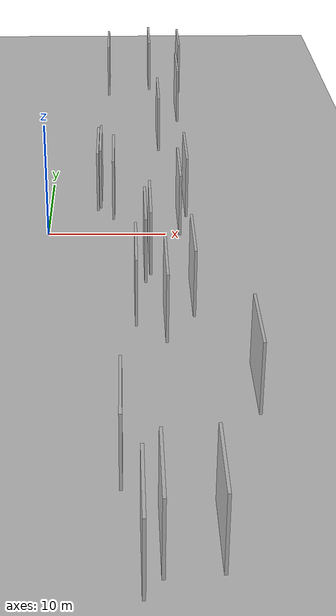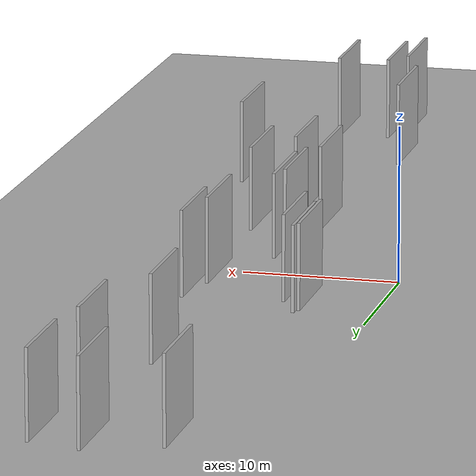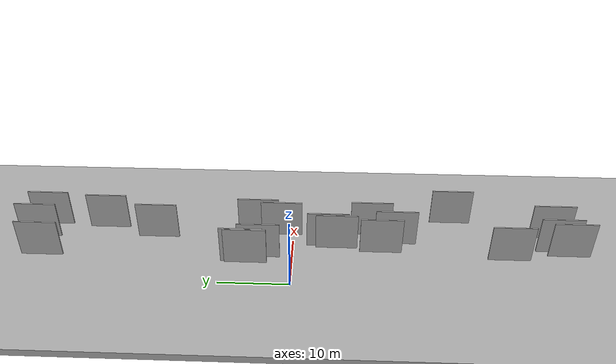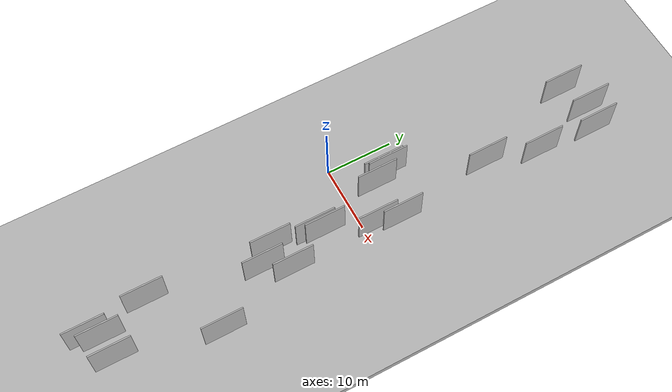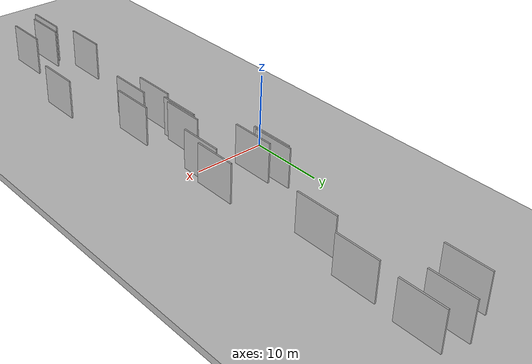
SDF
<?xml version="1.0" encoding="utf-8"?>

<sdf version="1.6">

   <world name="default">

      <gui fullscreen="0">

         <camera name="user_camera">

            <pose>-15 0 4.57585 0 0 0</pose>

            <view_controller>orbit</view_controller>

         </camera>

      </gui>

      <scene>

         <sky>

           <clouds>

             <speed>12</speed>

           </clouds>

         </sky>

         <ambient>0.4 0.4 0.4 1</ambient>

         <background>0.7 0.7 0.7 1</background>

         <shadows>1</shadows>

      </scene>

      <gravity>0 0 -9.8066</gravity>

      <magnetic_field>6e-06 2.3e-05 -4.2e-05</magnetic_field>

      <physics default="0" name="default_physics" type="ode">

         <ode>

            <solver>

               <type>quick</type>

               <iters>10</iters>

               <sor>1.0</sor>

               <use_dynamic_moi_rescaling>0</use_dynamic_moi_rescaling>

            </solver>

            <constraints>

               <cfm>0</cfm>

               <erp>0.2</erp>

               <contact_max_correcting_vel>100</contact_max_correcting_vel>

               <contact_surface_layer>0.001</contact_surface_layer>

            </constraints>

         </ode>

         <max_step_size>0.004</max_step_size>

         <real_time_factor>1</real_time_factor>

         <real_time_update_rate>250</real_time_update_rate>

      </physics>

      <light name="sun" type="directional">

         <cast_shadows>1</cast_shadows>

         <pose>0 0 10 0 0 0</pose>

         <diffuse>0.8 0.8 0.8 1</diffuse>

         <specular>0.2 0.2 0.2 1</specular>

         <attenuation>

            <range>1000</range>

            <constant>0.9</constant>

            <linear>0.01</linear>

            <quadratic>0.001</quadratic>

         </attenuation>

         <direction>-0.5 0.1 -0.9</direction>

      </light>

      <include>

         <name>ground_plane_1</name>

         <uri>model://HANNAS_ground_plane</uri>

         <pose>0 0 0  0 0 0</pose>

      </include>

      <include>

         <name>ground_plane_2</name>

         <uri>model://HANNAS_ground_plane</uri>

         <pose>100 0 0  0 0 0</pose>

      </include>

      <model name="HANNAS_wall_1">

         <static>1</static>

         <pose frame="">12.6105 36.4581 0.0 0.000000 0.000000 1.570796</pose>

         <link name="link">

            <pose frame="">0 0 3.00 0 0 0</pose>

            <collision name="collision">

               <geometry>

                  <box>

                     <size>6.00 0.2 6.00</size>

                  </box>

               </geometry>

               <max_contacts>10</max_contacts>

               <surface>

                  <contact>

                     <ode/>

                  </contact>

                  <bounce/>

                  <friction>

                     <torsional>

                        <ode/>

                     </torsional>

                     <ode/>

                  </friction>

               </surface>

            </collision>

            <visual name="visual">

               <cast_shadows>0</cast_shadows>

               <geometry>

                  <box>

                     <size>6.00 0.2 6.00</size>

                  </box>

               </geometry>

               <material>

                  <script>

                     <uri>model://HANNAS_wall/materials/scripts</uri>

                     <uri>model://HANNAS_wall/materials/textures</uri>

                     <name>vrc/HANNAS_wall</name>

                  </script>

               </material>

            </visual>

            <self_collide>0</self_collide>

            <enable_wind>0</enable_wind>

            <kinematic>0</kinematic>

         </link>

      </model>

      <model name="HANNAS_wall_2">

         <static>1</static>

         <pose frame="">7.3107 -12.6159 0.0 0.000000 0.000000 1.570796</pose>

         <link name="link">

            <pose frame="">0 0 3.00 0 0 0</pose>

            <collision name="collision">

               <geometry>

                  <box>

                     <size>6.00 0.2 6.00</size>

                  </box>

               </geometry>

               <max_contacts>10</max_contacts>

               <surface>

                  <contact>

                     <ode/>

                  </contact>

                  <bounce/>

                  <friction>

                     <torsional>

                        <ode/>

                     </torsional>

                     <ode/>

                  </friction>

               </surface>

            </collision>

            <visual name="visual">

               <cast_shadows>0</cast_shadows>

               <geometry>

                  <box>

                     <size>6.00 0.2 6.00</size>

                  </box>

               </geometry>

               <material>

                  <script>

                     <uri>model://HANNAS_wall/materials/scripts</uri>

                     <uri>model://HANNAS_wall/materials/textures</uri>

                     <name>vrc/HANNAS_wall</name>

                  </script>

               </material>

            </visual>

            <self_collide>0</self_collide>

            <enable_wind>0</enable_wind>

            <kinematic>0</kinematic>

         </link>

      </model>

      <model name="HANNAS_wall_3">

         <static>1</static>

         <pose frame="">8.4185 -37.9059 0.0 0.000000 0.000000 1.570796</pose>

         <link name="link">

            <pose frame="">0 0 3.00 0 0 0</pose>

            <collision name="collision">

               <geometry>

                  <box>

                     <size>6.00 0.2 6.00</size>

                  </box>

               </geometry>

               <max_contacts>10</max_contacts>

               <surface>

                  <contact>

                     <ode/>

                  </contact>

                  <bounce/>

                  <friction>

                     <torsional>

                        <ode/>

                     </torsional>

                     <ode/>

                  </friction>

               </surface>

            </collision>

            <visual name="visual">

               <cast_shadows>0</cast_shadows>

               <geometry>

                  <box>

                     <size>6.00 0.2 6.00</size>

                  </box>

               </geometry>

               <material>

                  <script>

                     <uri>model://HANNAS_wall/materials/scripts</uri>

                     <uri>model://HANNAS_wall/materials/textures</uri>

                     <name>vrc/HANNAS_wall</name>

                  </script>

               </material>

            </visual>

            <self_collide>0</self_collide>

            <enable_wind>0</enable_wind>

            <kinematic>0</kinematic>

         </link>

      </model>

      <model name="HANNAS_wall_4">

         <static>1</static>

         <pose frame="">11.8696 5.2201 0.0 0.000000 0.000000 1.570796</pose>

         <link name="link">

            <pose frame="">0 0 3.00 0 0 0</pose>

            <collision name="collision">

               <geometry>

                  <box>

                     <size>6.00 0.2 6.00</size>

                  </box>

               </geometry>

               <max_contacts>10</max_contacts>

               <surface>

                  <contact>

                     <ode/>

                  </contact>

                  <bounce/>

                  <friction>

                     <torsional>

                        <ode/>

                     </torsional>

                     <ode/>

                  </friction>

               </surface>

            </collision>

            <visual name="visual">

               <cast_shadows>0</cast_shadows>

               <geometry>

                  <box>

                     <size>6.00 0.2 6.00</size>

                  </box>

               </geometry>

               <material>

                  <script>

                     <uri>model://HANNAS_wall/materials/scripts</uri>

                     <uri>model://HANNAS_wall/materials/textures</uri>

                     <name>vrc/HANNAS_wall</name>

                  </script>

               </material>

            </visual>

            <self_collide>0</self_collide>

            <enable_wind>0</enable_wind>

            <kinematic>0</kinematic>

         </link>

      </model>

      <model name="HANNAS_wall_5">

         <static>1</static>

         <pose frame="">8.1172 -6.2833 0.0 0.000000 0.000000 1.570796</pose>

         <link name="link">

            <pose frame="">0 0 3.00 0 0 0</pose>

            <collision name="collision">

               <geometry>

                  <box>

                     <size>6.00 0.2 6.00</size>

                  </box>

               </geometry>

               <max_contacts>10</max_contacts>

               <surface>

                  <contact>

                     <ode/>

                  </contact>

                  <bounce/>

                  <friction>

                     <torsional>

                        <ode/>

                     </torsional>

                     <ode/>

                  </friction>

               </surface>

            </collision>

            <visual name="visual">

               <cast_shadows>0</cast_shadows>

               <geometry>

                  <box>

                     <size>6.00 0.2 6.00</size>

                  </box>

               </geometry>

               <material>

                  <script>

                     <uri>model://HANNAS_wall/materials/scripts</uri>

                     <uri>model://HANNAS_wall/materials/textures</uri>

                     <name>vrc/HANNAS_wall</name>

                  </script>

               </material>

            </visual>

            <self_collide>0</self_collide>

            <enable_wind>0</enable_wind>

            <kinematic>0</kinematic>

         </link>

      </model>

      <model name="HANNAS_wall_6">

         <static>1</static>

         <pose frame="">9.4708 -14.8449 0.0 0.000000 0.000000 1.570796</pose>

         <link name="link">

            <pose frame="">0 0 3.00 0 0 0</pose>

            <collision name="collision">

               <geometry>

                  <box>

                     <size>6.00 0.2 6.00</size>

                  </box>

               </geometry>

               <max_contacts>10</max_contacts>

               <surface>

                  <contact>

                     <ode/>

                  </contact>

                  <bounce/>

                  <friction>

                     <torsional>

                        <ode/>

                     </torsional>

                     <ode/>

                  </friction>

               </surface>

            </collision>

            <visual name="visual">

               <cast_shadows>0</cast_shadows>

               <geometry>

                  <box>

                     <size>6.00 0.2 6.00</size>

                  </box>

               </geometry>

               <material>

                  <script>

                     <uri>model://HANNAS_wall/materials/scripts</uri>

                     <uri>model://HANNAS_wall/materials/textures</uri>

                     <name>vrc/HANNAS_wall</name>

                  </script>

               </material>

            </visual>

            <self_collide>0</self_collide>

            <enable_wind>0</enable_wind>

            <kinematic>0</kinematic>

         </link>

      </model>

      <model name="HANNAS_wall_7">

         <static>1</static>

         <pose frame="">6.1593 -30.7250 0.0 0.000000 0.000000 1.570796</pose>

         <link name="link">

            <pose frame="">0 0 3.00 0 0 0</pose>

            <collision name="collision">

               <geometry>

                  <box>

                     <size>6.00 0.2 6.00</size>

                  </box>

               </geometry>

               <max_contacts>10</max_contacts>

               <surface>

                  <contact>

                     <ode/>

                  </contact>

                  <bounce/>

                  <friction>

                     <torsional>

                        <ode/>

                     </torsional>

                     <ode/>

                  </friction>

               </surface>

            </collision>

            <visual name="visual">

               <cast_shadows>0</cast_shadows>

               <geometry>

                  <box>

                     <size>6.00 0.2 6.00</size>

                  </box>

               </geometry>

               <material>

                  <script>

                     <uri>model://HANNAS_wall/materials/scripts</uri>

                     <uri>model://HANNAS_wall/materials/textures</uri>

                     <name>vrc/HANNAS_wall</name>

                  </script>

               </material>

            </visual>

            <self_collide>0</self_collide>

            <enable_wind>0</enable_wind>

            <kinematic>0</kinematic>

         </link>

      </model>

      <model name="HANNAS_wall_8">

         <static>1</static>

         <pose frame="">4.8755 35.7219 0.0 0.000000 0.000000 1.570796</pose>

         <link name="link">

            <pose frame="">0 0 3.00 0 0 0</pose>

            <collision name="collision">

               <geometry>

                  <box>

                     <size>6.00 0.2 6.00</size>

                  </box>

               </geometry>

               <max_contacts>10</max_contacts>

               <surface>

                  <contact>

                     <ode/>

                  </contact>

                  <bounce/>

                  <friction>

                     <torsional>

                        <ode/>

                     </torsional>

                     <ode/>

                  </friction>

               </surface>

            </collision>

            <visual name="visual">

               <cast_shadows>0</cast_shadows>

               <geometry>

                  <box>

                     <size>6.00 0.2 6.00</size>

                  </box>

               </geometry>

               <material>

                  <script>

                     <uri>model://HANNAS_wall/materials/scripts</uri>

                     <uri>model://HANNAS_wall/materials/textures</uri>

                     <name>vrc/HANNAS_wall</name>

                  </script>

               </material>

            </visual>

            <self_collide>0</self_collide>

            <enable_wind>0</enable_wind>

            <kinematic>0</kinematic>

         </link>

      </model>

      <model name="HANNAS_wall_9">

         <static>1</static>

         <pose frame="">9.8941 19.8571 0.0 0.000000 0.000000 1.570796</pose>

         <link name="link">

            <pose frame="">0 0 3.00 0 0 0</pose>

            <collision name="collision">

               <geometry>

                  <box>

                     <size>6.00 0.2 6.00</size>

                  </box>

               </geometry>

               <max_contacts>10</max_contacts>

               <surface>

                  <contact>

                     <ode/>

                  </contact>

                  <bounce/>

                  <friction>

                     <torsional>

                        <ode/>

                     </torsional>

                     <ode/>

                  </friction>

               </surface>

            </collision>

            <visual name="visual">

               <cast_shadows>0</cast_shadows>

               <geometry>

                  <box>

                     <size>6.00 0.2 6.00</size>

                  </box>

               </geometry>

               <material>

                  <script>

                     <uri>model://HANNAS_wall/materials/scripts</uri>

                     <uri>model://HANNAS_wall/materials/textures</uri>

                     <name>vrc/HANNAS_wall</name>

                  </script>

               </material>

            </visual>

            <self_collide>0</self_collide>

            <enable_wind>0</enable_wind>

            <kinematic>0</kinematic>

         </link>

      </model>

      <model name="HANNAS_wall_10">

         <static>1</static>

         <pose frame="">7.3531 -39.3836 0.0 0.000000 0.000000 1.570796</pose>

         <link name="link">

            <pose frame="">0 0 3.00 0 0 0</pose>

            <collision name="collision">

               <geometry>

                  <box>

                     <size>6.00 0.2 6.00</size>

                  </box>

               </geometry>

               <max_contacts>10</max_contacts>

               <surface>

                  <contact>

                     <ode/>

                  </contact>

                  <bounce/>

                  <friction>

                     <torsional>

                        <ode/>

                     </torsional>

                     <ode/>

                  </friction>

               </surface>

            </collision>

            <visual name="visual">

               <cast_shadows>0</cast_shadows>

               <geometry>

                  <box>

                     <size>6.00 0.2 6.00</size>

                  </box>

               </geometry>

               <material>

                  <script>

                     <uri>model://HANNAS_wall/materials/scripts</uri>

                     <uri>model://HANNAS_wall/materials/textures</uri>

                     <name>vrc/HANNAS_wall</name>

                  </script>

               </material>

            </visual>

            <self_collide>0</self_collide>

            <enable_wind>0</enable_wind>

            <kinematic>0</kinematic>

         </link>

      </model>

      <model name="HANNAS_wall_11">

         <static>1</static>

         <pose frame="">11.6187 -11.3941 0.0 0.000000 0.000000 1.570796</pose>

         <link name="link">

            <pose frame="">0 0 3.00 0 0 0</pose>

            <collision name="collision">

               <geometry>

                  <box>

                     <size>6.00 0.2 6.00</size>

                  </box>

               </geometry>

               <max_contacts>10</max_contacts>

               <surface>

                  <contact>

                     <ode/>

                  </contact>

                  <bounce/>

                  <friction>

                     <torsional>

                        <ode/>

                     </torsional>

                     <ode/>

                  </friction>

               </surface>

            </collision>

            <visual name="visual">

               <cast_shadows>0</cast_shadows>

               <geometry>

                  <box>

                     <size>6.00 0.2 6.00</size>

                  </box>

               </geometry>

               <material>

                  <script>

                     <uri>model://HANNAS_wall/materials/scripts</uri>

                     <uri>model://HANNAS_wall/materials/textures</uri>

                     <name>vrc/HANNAS_wall</name>

                  </script>

               </material>

            </visual>

            <self_collide>0</self_collide>

            <enable_wind>0</enable_wind>

            <kinematic>0</kinematic>

         </link>

      </model>

      <model name="HANNAS_wall_12">

         <static>1</static>

         <pose frame="">12.0836 27.6782 0.0 0.000000 0.000000 1.570796</pose>

         <link name="link">

            <pose frame="">0 0 3.00 0 0 0</pose>

            <collision name="collision">

               <geometry>

                  <box>

                     <size>6.00 0.2 6.00</size>

                  </box>

               </geometry>

               <max_contacts>10</max_contacts>

               <surface>

                  <contact>

                     <ode/>

                  </contact>

                  <bounce/>

                  <friction>

                     <torsional>

                        <ode/>

                     </torsional>

                     <ode/>

                  </friction>

               </surface>

            </collision>

            <visual name="visual">

               <cast_shadows>0</cast_shadows>

               <geometry>

                  <box>

                     <size>6.00 0.2 6.00</size>

                  </box>

               </geometry>

               <material>

                  <script>

                     <uri>model://HANNAS_wall/materials/scripts</uri>

                     <uri>model://HANNAS_wall/materials/textures</uri>

                     <name>vrc/HANNAS_wall</name>

                  </script>

               </material>

            </visual>

            <self_collide>0</self_collide>

            <enable_wind>0</enable_wind>

            <kinematic>0</kinematic>

         </link>

      </model>

      <model name="HANNAS_wall_13">

         <static>1</static>

         <pose frame="">4.4189 7.0641 0.0 0.000000 0.000000 1.570796</pose>

         <link name="link">

            <pose frame="">0 0 3.00 0 0 0</pose>

            <collision name="collision">

               <geometry>

                  <box>

                     <size>6.00 0.2 6.00</size>

                  </box>

               </geometry>

               <max_contacts>10</max_contacts>

               <surface>

                  <contact>

                     <ode/>

                  </contact>

                  <bounce/>

                  <friction>

                     <torsional>

                        <ode/>

                     </torsional>

                     <ode/>

                  </friction>

               </surface>

            </collision>

            <visual name="visual">

               <cast_shadows>0</cast_shadows>

               <geometry>

                  <box>

                     <size>6.00 0.2 6.00</size>

                  </box>

               </geometry>

               <material>

                  <script>

                     <uri>model://HANNAS_wall/materials/scripts</uri>

                     <uri>model://HANNAS_wall/materials/textures</uri>

                     <name>vrc/HANNAS_wall</name>

                  </script>

               </material>

            </visual>

            <self_collide>0</self_collide>

            <enable_wind>0</enable_wind>

            <kinematic>0</kinematic>

         </link>

      </model>

      <model name="HANNAS_wall_14">

         <static>1</static>

         <pose frame="">11.1534 1.7443 0.0 0.000000 0.000000 1.570796</pose>

         <link name="link">

            <pose frame="">0 0 3.00 0 0 0</pose>

            <collision name="collision">

               <geometry>

                  <box>

                     <size>6.00 0.2 6.00</size>

                  </box>

               </geometry>

               <max_contacts>10</max_contacts>

               <surface>

                  <contact>

                     <ode/>

                  </contact>

                  <bounce/>

                  <friction>

                     <torsional>

                        <ode/>

                     </torsional>

                     <ode/>

                  </friction>

               </surface>

            </collision>

            <visual name="visual">

               <cast_shadows>0</cast_shadows>

               <geometry>

                  <box>

                     <size>6.00 0.2 6.00</size>

                  </box>

               </geometry>

               <material>

                  <script>

                     <uri>model://HANNAS_wall/materials/scripts</uri>

                     <uri>model://HANNAS_wall/materials/textures</uri>

                     <name>vrc/HANNAS_wall</name>

                  </script>

               </material>

            </visual>

            <self_collide>0</self_collide>

            <enable_wind>0</enable_wind>

            <kinematic>0</kinematic>

         </link>

      </model>

      <model name="HANNAS_wall_15">

         <static>1</static>

         <pose frame="">9.3644 37.3362 0.0 0.000000 0.000000 1.570796</pose>

         <link name="link">

            <pose frame="">0 0 3.00 0 0 0</pose>

            <collision name="collision">

               <geometry>

                  <box>

                     <size>6.00 0.2 6.00</size>

                  </box>

               </geometry>

               <max_contacts>10</max_contacts>

               <surface>

                  <contact>

                     <ode/>

                  </contact>

                  <bounce/>

                  <friction>

                     <torsional>

                        <ode/>

                     </torsional>

                     <ode/>

                  </friction>

               </surface>

            </collision>

            <visual name="visual">

               <cast_shadows>0</cast_shadows>

               <geometry>

                  <box>

                     <size>6.00 0.2 6.00</size>

                  </box>

               </geometry>

               <material>

                  <script>

                     <uri>model://HANNAS_wall/materials/scripts</uri>

                     <uri>model://HANNAS_wall/materials/textures</uri>

                     <name>vrc/HANNAS_wall</name>

                  </script>

               </material>

            </visual>

            <self_collide>0</self_collide>

            <enable_wind>0</enable_wind>

            <kinematic>0</kinematic>

         </link>

      </model>

      <model name="HANNAS_wall_16">

         <static>1</static>

         <pose frame="">5.5523 4.7514 0.0 0.000000 0.000000 1.570796</pose>

         <link name="link">

            <pose frame="">0 0 3.00 0 0 0</pose>

            <collision name="collision">

               <geometry>

                  <box>

                     <size>6.00 0.2 6.00</size>

                  </box>

               </geometry>

               <max_contacts>10</max_contacts>

               <surface>

                  <contact>

                     <ode/>

                  </contact>

                  <bounce/>

                  <friction>

                     <torsional>

                        <ode/>

                     </torsional>

                     <ode/>

                  </friction>

               </surface>

            </collision>

            <visual name="visual">

               <cast_shadows>0</cast_shadows>

               <geometry>

                  <box>

                     <size>6.00 0.2 6.00</size>

                  </box>

               </geometry>

               <material>

                  <script>

                     <uri>model://HANNAS_wall/materials/scripts</uri>

                     <uri>model://HANNAS_wall/materials/textures</uri>

                     <name>vrc/HANNAS_wall</name>

                  </script>

               </material>

            </visual>

            <self_collide>0</self_collide>

            <enable_wind>0</enable_wind>

            <kinematic>0</kinematic>

         </link>

      </model>

      <model name="HANNAS_wall_17">

         <static>1</static>

         <pose frame="">11.7706 -37.5896 0.0 0.000000 0.000000 1.570796</pose>

         <link name="link">

            <pose frame="">0 0 3.00 0 0 0</pose>

            <collision name="collision">

               <geometry>

                  <box>

                     <size>6.00 0.2 6.00</size>

                  </box>

               </geometry>

               <max_contacts>10</max_contacts>

               <surface>

                  <contact>

                     <ode/>

                  </contact>

                  <bounce/>

                  <friction>

                     <torsional>

                        <ode/>

                     </torsional>

                     <ode/>

                  </friction>

               </surface>

            </collision>

            <visual name="visual">

               <cast_shadows>0</cast_shadows>

               <geometry>

                  <box>

                     <size>6.00 0.2 6.00</size>

                  </box>

               </geometry>

               <material>

                  <script>

                     <uri>model://HANNAS_wall/materials/scripts</uri>

                     <uri>model://HANNAS_wall/materials/textures</uri>

                     <name>vrc/HANNAS_wall</name>

                  </script>

               </material>

            </visual>

            <self_collide>0</self_collide>

            <enable_wind>0</enable_wind>

            <kinematic>0</kinematic>

         </link>

      </model>

      <model name="HANNAS_wall_18">

         <static>1</static>

         <pose frame="">8.5319 -5.0126 0.0 0.000000 0.000000 1.570796</pose>

         <link name="link">

            <pose frame="">0 0 3.00 0 0 0</pose>

            <collision name="collision">

               <geometry>

                  <box>

                     <size>6.00 0.2 6.00</size>

                  </box>

               </geometry>

               <max_contacts>10</max_contacts>

               <surface>

                  <contact>

                     <ode/>

                  </contact>

                  <bounce/>

                  <friction>

                     <torsional>

                        <ode/>

                     </torsional>

                     <ode/>

                  </friction>

               </surface>

            </collision>

            <visual name="visual">

               <cast_shadows>0</cast_shadows>

               <geometry>

                  <box>

                     <size>6.00 0.2 6.00</size>

                  </box>

               </geometry>

               <material>

                  <script>

                     <uri>model://HANNAS_wall/materials/scripts</uri>

                     <uri>model://HANNAS_wall/materials/textures</uri>

                     <name>vrc/HANNAS_wall</name>

                  </script>

               </material>

            </visual>

            <self_collide>0</self_collide>

            <enable_wind>0</enable_wind>

            <kinematic>0</kinematic>

         </link>

      </model>

      <model name="HANNAS_wall_19">

         <static>1</static>

         <pose frame="">4.1884 6.5102 0.0 0.000000 0.000000 1.570796</pose>

         <link name="link">

            <pose frame="">0 0 3.00 0 0 0</pose>

            <collision name="collision">

               <geometry>

                  <box>

                     <size>6.00 0.2 6.00</size>

                  </box>

               </geometry>

               <max_contacts>10</max_contacts>

               <surface>

                  <contact>

                     <ode/>

                  </contact>

                  <bounce/>

                  <friction>

                     <torsional>

                        <ode/>

                     </torsional>

                     <ode/>

                  </friction>

               </surface>

            </collision>

            <visual name="visual">

               <cast_shadows>0</cast_shadows>

               <geometry>

                  <box>

                     <size>6.00 0.2 6.00</size>

                  </box>

               </geometry>

               <material>

                  <script>

                     <uri>model://HANNAS_wall/materials/scripts</uri>

                     <uri>model://HANNAS_wall/materials/textures</uri>

                     <name>vrc/HANNAS_wall</name>

                  </script>

               </material>

            </visual>

            <self_collide>0</self_collide>

            <enable_wind>0</enable_wind>

            <kinematic>0</kinematic>

         </link>

      </model>

      <model name="HANNAS_wall_20">

         <static>1</static>

         <pose frame="">15.2035 -23.4474 0.0 0.000000 0.000000 1.570796</pose>

         <link name="link">

            <pose frame="">0 0 3.00 0 0 0</pose>

            <collision name="collision">

               <geometry>

                  <box>

                     <size>6.00 0.2 6.00</size>

                  </box>

               </geometry>

               <max_contacts>10</max_contacts>

               <surface>

                  <contact>

                     <ode/>

                  </contact>

                  <bounce/>

                  <friction>

                     <torsional>

                        <ode/>

                     </torsional>

                     <ode/>

                  </friction>

               </surface>

            </collision>

            <visual name="visual">

               <cast_shadows>0</cast_shadows>

               <geometry>

                  <box>

                     <size>6.00 0.2 6.00</size>

                  </box>

               </geometry>

               <material>

                  <script>

                     <uri>model://HANNAS_wall/materials/scripts</uri>

                     <uri>model://HANNAS_wall/materials/textures</uri>

                     <name>vrc/HANNAS_wall</name>

                  </script>

               </material>

            </visual>

            <self_collide>0</self_collide>

            <enable_wind>0</enable_wind>

            <kinematic>0</kinematic>

         </link>

      </model>

   </world>

</sdf>

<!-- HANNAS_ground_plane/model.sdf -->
<sdf version="1.4">
<model name="HANNAS_ground_plane">
  <static>true</static>
    <link name="link">
      <collision name="collision">
        <geometry>
          <plane>
            <normal>0 0 1</normal>
            <size>1000 1000</size>
          </plane>
        </geometry>
        <surface>
          <friction>
            <ode>
              <mu>100</mu>
              <mu2>50</mu2>
            </ode>
          </friction>
        </surface>
      </collision>
      <visual name="visual">
        <cast_shadows>false</cast_shadows>
        <geometry>
          <plane>
            <normal>0 0 1</normal>
            <size>1000 1000</size>
          </plane>
        </geometry>
        <material>
          <script>
            <uri>model://HANNAS_ground_plane/materials/scripts/HANNAS_ground_plane.material</uri>
	    <uri>model://HANNAS_ground_plane/materials/textures</uri>
            <name>HANNASGroundPlane/Image</name>
          </script>
        </material>
      </visual>
    </link>
  </model>
</sdf>
